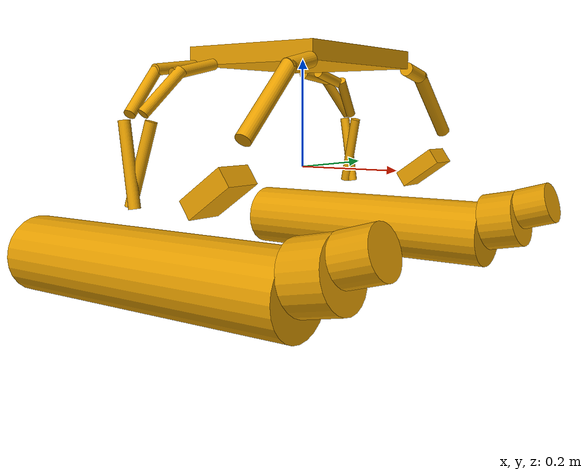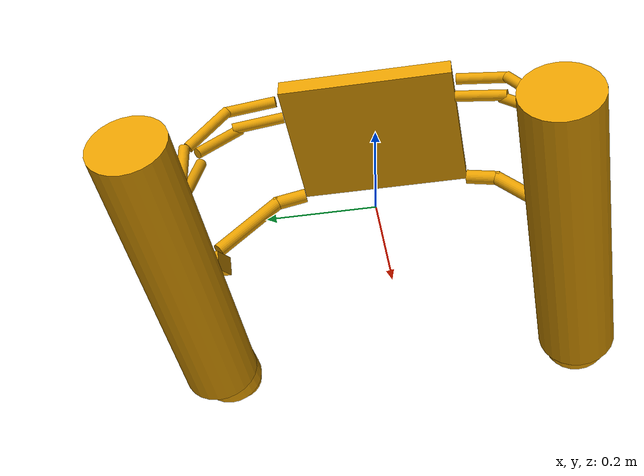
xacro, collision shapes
<?xml version="1.0"?>
<robot xmlns:xacro="http://ros.org/wiki/xacro" name="wam-v">
  <!-- Required arg for melodic and kinetic... -->
  <xacro:arg name="namespace" default="wamv"/>
  <xacro:property name="namespace" value="$(arg namespace)" scope="global" />

  <!-- Desired hull dimensions in meters (length x width x height) -->
  <xacro:arg name="hull_length" default="0.72"/>
  <xacro:arg name="hull_width" default="0.80"/>
  <xacro:arg name="hull_height" default="0.44"/>

  <!-- Original geometry reference values (meters) -->
  <xacro:property name="target_length" value="$(arg hull_length)" scope="global" />
  <xacro:property name="target_width" value="$(arg hull_width)" scope="global" />
  <xacro:property name="target_height" value="$(arg hull_height)" scope="global" />
  <xacro:property name="orig_length" value="4.925" scope="global" />
  <xacro:property name="orig_height" value="1.30" scope="global" />
  <xacro:property name="float_radius_orig" value="0.2" scope="global" />
  <xacro:property name="float_offset_y_orig" value="1.03" scope="global" />

  <!-- Boat STL original dimensions captured in millimeters (720 x 800 x 440) -->
  <xacro:property name="mesh_length_orig" value="720.0" scope="global" />
  <xacro:property name="mesh_width_orig" value="800.0" scope="global" />
  <xacro:property name="mesh_height_orig" value="440.0" scope="global" />

  <!-- Scaling factors derived from target dimensions -->
  <xacro:property name="scale_x" value="${target_length / orig_length}" scope="global" />
  <xacro:property name="scale_z" value="${target_height / orig_height}" scope="global" />
  <xacro:property name="scale_y" value="${(target_width * 0.5 - float_radius_orig * scale_z) / float_offset_y_orig}" scope="global" />
  <xacro:property name="float_offset_y" value="${float_offset_y_orig * scale_y}" scope="global" />
  <xacro:property name="float_radius" value="${float_radius_orig * scale_z}" scope="global" />
  <xacro:property name="scale_volume" value="${scale_x * scale_y * scale_z}" scope="global" />
  <xacro:property name="mass_scale" value="${scale_volume}" scope="global" />
  <xacro:property name="inertia_scale_x" value="${scale_volume * (scale_y * scale_y + scale_z * scale_z) / 2.0}" scope="global" />
  <xacro:property name="inertia_scale_y" value="${scale_volume * (scale_x * scale_x + scale_z * scale_z) / 2.0}" scope="global" />
  <xacro:property name="inertia_scale_z" value="${scale_volume * (scale_x * scale_x + scale_y * scale_y) / 2.0}" scope="global" />
  <xacro:property name="mesh_scale_x" value="${target_length / (mesh_length_orig * 1.0)}" scope="global" />
  <xacro:property name="mesh_scale_y" value="${target_width / (mesh_width_orig * 1.0)}" scope="global" />
  <xacro:property name="mesh_scale_z" value="${target_height / (mesh_height_orig * 1.0)}" scope="global" />
  <xacro:property name="center_offset" value="${target_height / 2.0}" scope="global" />
  <!-- Macro for creating the main collisions as simple shapes. -->
  <xacro:macro name="main_collisions" params="prefix reflect:=1">
    <!-- Main float -->
    <collision name="${prefix}_float">
      <origin xyz="${-0.4*scale_x} ${float_offset_y*reflect} ${0.2*scale_z - center_offset}" rpy="${0*reflect} 1.57 0" />
      <geometry>
        <cylinder length="${4*scale_x}" radius="${float_radius}" />
      </geometry>
    </collision>

    <collision name="${prefix}_mid_float">
      <origin xyz="${1.85*scale_x} ${float_offset_y*reflect} ${0.3*scale_z - center_offset}" rpy="${0*reflect} 1.38 0" />
      <geometry>
        <cylinder length="${0.5*scale_x}" radius="${0.17*scale_z}" />
      </geometry>
    </collision>
    <collision name="${prefix}_front_float">
      <origin xyz="${2.3*scale_x} ${float_offset_y*reflect} ${0.4*scale_z - center_offset}" rpy="${0*reflect} 1.3 0" />
      <geometry>
        <cylinder length="${0.45*scale_x}" radius="${0.12*scale_z}" />
      </geometry>
    </collision>

    <!-- Front beam -->
    <collision name="front_${prefix}_beam_lower">
      <origin xyz="${0.9*scale_x} ${0.85*scale_y*reflect} ${1.0*scale_z - center_offset}" rpy="${0.78*reflect} 0 0" />
      <geometry>
        <cylinder length="${0.5*scale_y}" radius="${0.04*scale_z}" />
      </geometry>
    </collision>

    <collision name="front_${prefix}_beam_upper">
      <origin xyz="${0.9*scale_x} ${0.6*scale_y*reflect} ${1.18*scale_z - center_offset}" rpy="${1.35*reflect} 0 0" />
      <geometry>
        <cylinder length="${0.2*scale_y}" radius="${0.04*scale_z}" />
      </geometry>
    </collision>

    <!-- Mid beam -->
    <collision name="mid_${prefix}_beam_lower">
      <origin xyz="${-0.65*scale_x} ${0.99*scale_y*reflect} ${0.7*scale_z - center_offset}" rpy="${0.1*reflect} 0.25 0" />
      <geometry>
        <cylinder length="${0.45*scale_y}" radius="${0.03*scale_z}" />
      </geometry>
    </collision>

    <collision name="mid_${prefix}_beam_medium">
      <origin xyz="${-0.57*scale_x} ${0.87*scale_y*reflect} ${1.05*scale_z - center_offset}" rpy="${0.75*reflect} 0.25 0" />
      <geometry>
        <cylinder length="${0.32*scale_y}" radius="${0.03*scale_z}" />
      </geometry>
    </collision>

    <collision name="mid_${prefix}_beam_upper">
      <origin xyz="${-0.55*scale_x} ${0.65*scale_y*reflect} ${1.17*scale_z - center_offset}" rpy="${1.35*reflect} 0.25 0" />
      <geometry>
        <cylinder length="${0.3*scale_y}" radius="${0.03*scale_z}" />
      </geometry>
    </collision>

    <!-- Rear beam -->
    <collision name="rear_${prefix}_beam_lower">
      <origin xyz="${-0.74*scale_x} ${float_offset_y*reflect} ${0.7*scale_z - center_offset}" rpy="${0*reflect} -0.15 0" />
      <geometry>
        <cylinder length="${0.45*scale_y}" radius="${0.03*scale_z}" />
      </geometry>
    </collision>

    <collision name="rear_${prefix}_beam_medium">
      <origin xyz="${-0.79*scale_x} ${0.91*scale_y*reflect} ${1.05*scale_z - center_offset}" rpy="${0.75*reflect} -0.15 0" />
      <geometry>
        <cylinder length="${0.32*scale_y}" radius="${0.03*scale_z}" />
      </geometry>
    </collision>

    <collision name="rear_${prefix}_beam_upper">
      <origin xyz="${-0.81*scale_x} ${0.67*scale_y*reflect} ${1.18*scale_z - center_offset}" rpy="${1.45*reflect} -0.15 0" />
      <geometry>
        <cylinder length="${0.3*scale_y}" radius="${0.03*scale_z}" />
      </geometry>
    </collision>

    <!-- Joint -->
    <collision name="${prefix}_joint">
      <origin xyz="${0.58*scale_x} ${float_offset_y*reflect} ${0.6*scale_z - center_offset}" rpy="${0*reflect} -0.6 0" />
      <geometry>
        <box size="${0.65*scale_x} ${0.2*scale_y} ${0.1*scale_z}" />
      </geometry>
    </collision>
  </xacro:macro>

  <!-- Basic model of the 16' WAM-V USV -->
  <link name="${namespace}/base_link">
    <visual>
      <origin xyz="0 0 ${-center_offset}" rpy="0 0 0" />
      <geometry>
        <mesh filename="package://wamv_description/models/BoatBase/meshes/boat.stl" scale="${mesh_scale_x} ${mesh_scale_y} ${mesh_scale_z}"/>
      </geometry>
    </visual>

    <!-- Left base collisions -->
    <xacro:main_collisions prefix="left" reflect="1" />

    <!-- Right side collisions -->
    <xacro:main_collisions prefix="right" reflect="-1" />

     <!-- Top base -->
    <collision name="top_base">
      <origin xyz="0 0 ${1.25*scale_z - center_offset}" rpy="0 0 0" />
      <geometry>
        <box size="${1.85*scale_x} ${1.0*scale_y} ${0.1*scale_z}" />
      </geometry>
    </collision>

    <inertial>
      <!-- From WAM-V spec sheet -->
      <mass value="${180.0 * mass_scale}"/>
      <inertia ixx="${120.0 * inertia_scale_x}" ixy="0.0" ixz="0.0" iyy="${393.0 * inertia_scale_y}" iyz="0.0" izz="${446.0 * inertia_scale_z}"/>
    </inertial>
  </link>

  <gazebo>
    <enable_wind>true</enable_wind>
  </gazebo>

  <gazebo reference="${namespace}/base_link">
    <visual>
      <material>
        <diffuse>1.0 1.0 1.0</diffuse>
        <specular>1.0 1.0 1.0</specular>
        <pbr>
          <metal>
            <albedo_map>model://wamv_description/models/WAM-V-Base/mesh/WAM-V_Albedo.png</albedo_map>
            <normal_map>model://wamv_description/models/WAM-V-Base/mesh/WAM-V_Normal.png</normal_map>
            <roughness_map>model://wamv_description/models/WAM-V-Base/mesh/WAM-V_Roughness.png</roughness_map>
            <metalness_map>model://wamv_description/models/WAM-V-Base/mesh/WAM-V_Metalness.png</metalness_map>
          </metal>
        </pbr>
      </material>
    </visual>

    <sensor type="contact" name="contact_sensor">
      <contact>
        <!-- collisions are renamed during urdf -> sdf fixed joint lumping -->
        <collision>${namespace}/base_link_fixed_joint_lump__top_base_collision_24</collision>
        <collision>${namespace}/base_link_fixed_joint_lump__left_float_collision</collision>
        <collision>${namespace}/base_link_fixed_joint_lump__left_mid_float_collision_1</collision>
        <collision>${namespace}/base_link_fixed_joint_lump__left_front_float_collision_2</collision>
        <collision>${namespace}/base_link_fixed_joint_lump__right_float_collision_12</collision>
        <collision>${namespace}/base_link_fixed_joint_lump__right_mid_float_collision_13</collision>
        <collision>${namespace}/base_link_fixed_joint_lump__right_front_float_collision_14</collision>
        <topic>/vrx/contacts</topic>
      </contact>
      <always_on>1</always_on>
      <update_rate>5</update_rate>
    </sensor>
  </gazebo>

</robot>
